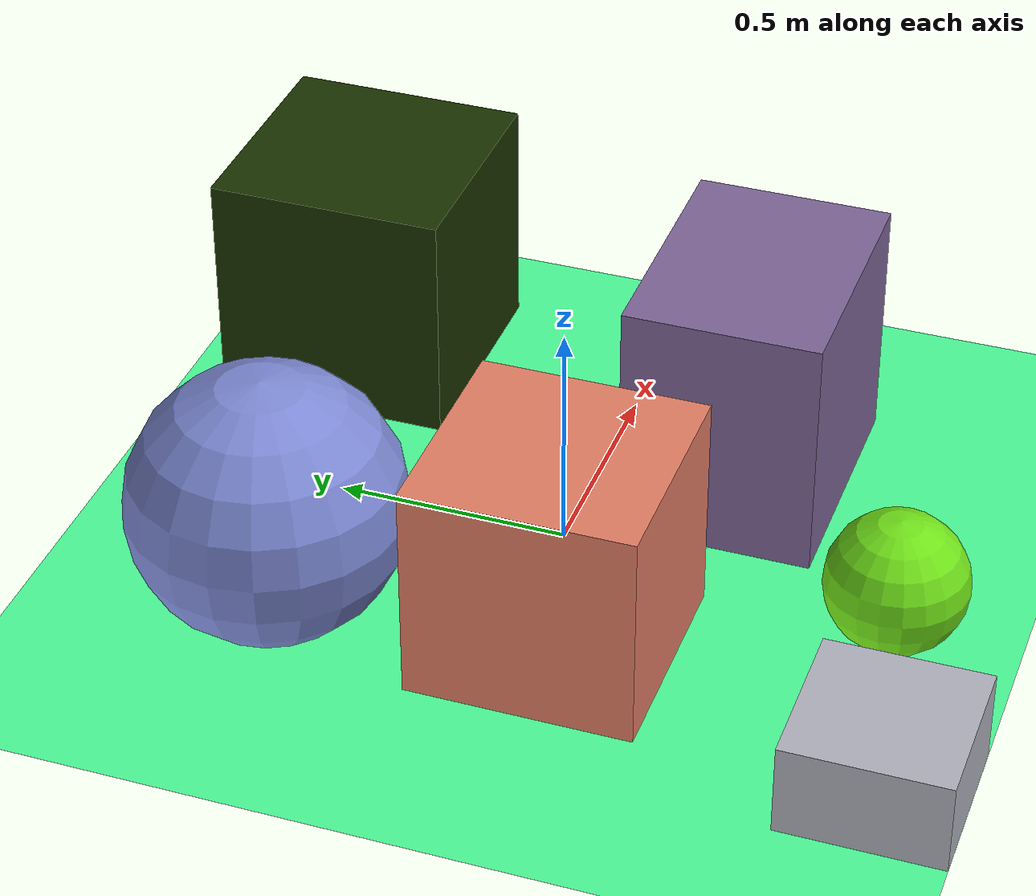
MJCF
<mujoco>
   <asset>
<texture type="skybox" builtin="gradient" rgb1="0.8 0.9 0.1" rgb2="0.2 0.3 0.6" width="256" height="256"/>
<texture name="checker_0" builtin="checker" type="2d" rgb1="0.5 0.8 0.8" rgb2="0.5 0.0 0.4" width="200" height="200"/>
<texture name="gradient_1" builtin="gradient" rgb1="0.6 0.7 0.9" rgb2="0.8 0.7 0.6" width="200" height="200"/>
<texture name="flat_2" builtin="flat" rgb1="0.9 0.5 0.4" rgb2="0.9 0.5 0.4"  width="200" height="200"/>
<texture name="flat_3" builtin="flat" rgb1="0.1 0.2 0.0" rgb2="0.1 0.2 0.0"  width="200" height="200"/>
<texture name="checker_4" builtin="checker" type="2d" rgb1="0.7 1.0 0.9" rgb2="0.3 0.1 0.8" width="200" height="200"/>
<texture name="checker_5" builtin="checker" type="2d" rgb1="0.9 0.9 0.2" rgb2="0.0 0.9 0.0" width="200" height="200"/><material name="checker_0_mat" reflectance="0" texrepeat="4 4" texture="checker_0" texuniform="false" />
<material name="gradient_1_mat" reflectance="0" texture="gradient_1" texuniform="true"/>
<material name="flat_2_mat" reflectance="0" texture="flat_2" texuniform="true"/>
<material name="flat_3_mat" reflectance="0" texture="flat_3" texuniform="true"/>
<material name="checker_4_mat" reflectance="0" texrepeat="3 3" texture="checker_4" texuniform="false" />
<material name="checker_5_mat" reflectance="0" texrepeat="10 10" texture="checker_5" texuniform="false" />
   </asset>

   <worldbody>
      <light diffuse=".9 .9 .9" pos="0 0 3" dir="0 0 -1"/>
     <geom type="plane" size="1 1 0.1" rgba="0.3 1.0 0.6 1"/>
<geom type="box" pos="0.34 -0.31 0.27" size="0.28 0.21 0.27" material="checker_0_mat" />
<geom type="box" pos="-0.56 -0.83 0.1" size="0.17 0.17 0.1" material="gradient_1_mat" />
<geom type="box" pos="-0.34 -0.1 0.24" size="0.24 0.24 0.24" material="flat_2_mat" />
<geom type="box" pos="0.53 0.64 0.26" size="0.26 0.26 0.26" material="flat_3_mat" />
<geom type="sphere" pos="-0.45 0.47 0.29" size="0.29 0.29 0.29" material="checker_4_mat" />
<geom type="sphere" pos="-0.11 -0.74 0.15" size="0.15 0.15 0.15" material="checker_5_mat" /><camera euler="60 0 180" fovy="60" name="camera_a" pos="0 -1.5 1"></camera>   </worldbody>
</mujoco>
